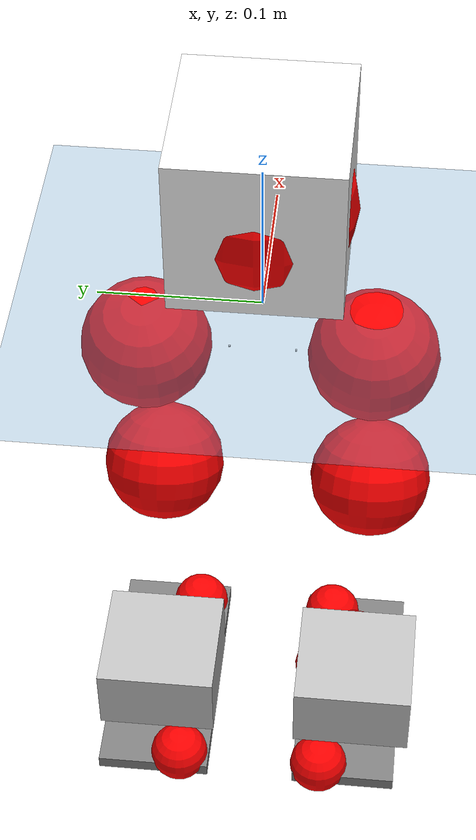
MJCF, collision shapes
<mujoco model="pi_12dof_release_v1">
  <compiler angle="radian" assetdir="assets" balanceinertia="true" inertiafromgeom="false"/>

  <option timestep="0.005" density="1.2" viscosity="2e-05"/>

  <size nkey="1"/>

  <visual>
    <quality shadowsize="8192"/>
    <map shadowclip="0.5"/>
  </visual>

  <default>
    <default class="/">
      <joint armature="0.01" damping="0.01" frictionloss="0.01"/>
      <geom contype="0" conaffinity="0" group="1" solref="-1000 -80"/>
      <site size="0.01 0.005 0.005" group="5"/>
      <general forcelimited="true" biastype="affine" gainprm="20" biasprm="0 -20 -0.5"/>
      <default class="foot">
        <geom size="0.0845 0.036 0.005" type="box" condim="6" group="4" priority="1" friction="0.9 0.2 0.2" solimp="0.015 1 0.005"/>
      </default>
      <default class="reward_collision_sphere">
        <geom group="5" rgba="1 0 0 1"/>
      </default>
    </default>
  </default>

  <asset>
    <texture type="skybox" colorspace="auto" name="//unnamed_texture_0" builtin="gradient" rgb1="0.95 0.95 0.95" rgb2="0.95 0.95 0.95" width="100" height="600"/>
    <texture type="2d" colorspace="auto" name="texplane" builtin="checker" rgb1="0.345 0.575 0.748" rgb2="0.345 0.575 0.748" markrgb="1 1 1" width="512" height="512"/>
    <material name="MatPlane" class="/" texture="texplane" texuniform="true" texrepeat="2 2" specular="0.9"/>
    <mesh name="baselink_1" class="/" file="baselink_1.STL"/>
    <mesh name="r_hip_pitch_link" class="/" file="r_hip_pitch_link.STL"/>
    <mesh name="r_hip_roll_link" class="/" file="r_hip_roll_link.STL"/>
    <mesh name="r_thigh_link" class="/" file="r_thigh_link.STL"/>
    <mesh name="r_calf_link" class="/" file="r_calf_link.STL"/>
    <mesh name="r_ankle_pitch_link" class="/" file="r_ankle_pitch_link.STL"/>
    <mesh name="r_ankle_roll_link" class="/" file="r_ankle_roll_link.STL"/>
    <mesh name="l_hip_pitch_link" class="/" file="l_hip_pitch_link.STL"/>
    <mesh name="l_hip_roll_link" class="/" file="l_hip_roll_link.STL"/>
    <mesh name="l_thigh_link" class="/" file="l_thigh_link.STL"/>
    <mesh name="l_calf_link" class="/" file="l_calf_link.STL"/>
    <mesh name="l_ankle_pitch_link" class="/" file="l_ankle_pitch_link.STL"/>
    <mesh name="l_ankle_roll_link" class="/" file="l_ankle_roll_link.STL"/>
  </asset>

  <worldbody>
    <geom name="floor" class="/" size="100 100 0.125" type="plane" group="0" material="MatPlane"/>
    <light name="toplight_shadow" class="/" pos="0 0 5" dir="0.0990148 0.0990148 -0.990148" type="directional" ambient="0.04 0.04 0.04" diffuse="0.55 0.55 0.55" specular="0.12 0.12 0.12"/>
    <light name="toplight_fill" class="/" pos="0 0 5" dir="0.0990148 0.0990148 -0.990148" type="directional" castshadow="false" ambient="0.04 0.04 0.04" diffuse="0.3 0.3 0.3" specular="0.08 0.08 0.08"/>
    <body name="trunk" pos="0.000680027 0.000128391 -0.00101581" quat="1 -0.000309812 0.000289123 0.000158329">
      <inertial pos="-5.07425e-05 -0.00238233 0.046399" quat="0.696536 0.00988723 0.010449 0.717377" mass="2.34586" diaginertia="0.0114011 0.00525391 0.00758049"/>
      <joint name="//unnamed_joint_0" type="free"/>
      <geom name="//unnamed_geom_1" class="/" type="mesh" density="0" rgba="1 1 1 1" mesh="baselink_1"/>
      <geom name="//unnamed_geom_2" class="/" size="0.0508704 0.0508704 0.0508704" pos="0 0 0.0901305" type="box" rgba="1 1 1 1"/>
      <geom name="//unnamed_geom_3" class="reward_collision_sphere" size="0.0559575" pos="0 0 0.0788642"/>
      <site name="imu" class="/" pos="0.00965195 -0.000362906 -0.00956951" size="0.0101741"/>
      <camera name="track" class="/" pos="0 -1.79212 0" quat="0.707107 0.707107 0 0" mode="trackcom"/>
      <camera name="ego_camera" class="/" pos="0.0772151 0 0.202794" quat="-0.5 -0.5 0.5 0.5"/>
      <body name="r_hip_pitch_link" pos="-0.000736088 -0.0207531 -0.0365666" quat="0.99219 -1.36282e-05 -0.124739 3.83116e-05">
        <inertial pos="0.000869139 -0.051287 4.56996e-05" quat="-0.0192806 0.705711 -0.0289575 0.707645" mass="0.374964" diaginertia="0.000121347 5.41897e-05 0.000146188"/>
        <joint name="r_hip_pitch_joint" class="/" pos="0 0 0" axis="-0.000826838 -0.999984 -0.00559654" stiffness="0.0010127" range="-1.73656 1.20714" armature="0.00938872" damping="0.0129372" frictionloss="0.0106675"/>
        <geom name="//unnamed_geom_4" class="/" type="mesh" density="0" rgba="0.75294 0.75294 0.75294 1" mesh="r_hip_pitch_link"/>
        <geom name="//unnamed_geom_5" class="/" size="0.000508704 0.000508704 0.000508704" type="box" rgba="0.75294 0.75294 0.75294 1"/>
        <body name="r_hip_roll_link" pos="0.000528568 -0.0477842 -8.07919e-05" quat="1 0.000306284 -0.00014248 -0.000747797">
          <inertial pos="-0.000632941 -0.000156127 -0.0697983" quat="0.709047 -0.0780168 -0.0819087 0.696029" mass="0.404424" diaginertia="0.000384751 0.000155101 0.000228966"/>
          <joint name="r_hip_roll_joint" class="/" pos="0 0 0" axis="-0.999998 -0.00143655 -0.00152494" stiffness="0.000650975" range="-0.111113 0.495009" armature="0.0101984" damping="0" frictionloss="0.011221"/>
          <geom name="//unnamed_geom_6" class="/" type="mesh" density="0" rgba="0.75294 0.75294 0.75294 1" mesh="r_hip_roll_link"/>
          <geom name="//unnamed_geom_7" class="/" size="0.000508704 0.000508704 0.000508704" type="box" rgba="0.75294 0.75294 0.75294 1"/>
          <geom name="//unnamed_geom_8" class="reward_collision_sphere" size="0.0406964"/>
          <body name="r_thigh_link" pos="0.000626394 0.00235044 -0.0782565" quat="1 1.92719e-05 0.000397361 8.06392e-05">
            <inertial pos="3.1332e-06 -0.000280721 -0.0527503" quat="0.737004 0.675886 0.00023015 0.00160361" mass="0.118728" diaginertia="0.000142202 5.5036e-05 0.000104723"/>
            <joint name="r_thigh_joint" class="/" pos="0 0 0" axis="4.97351e-05 -4.54099e-06 -1" range="-0.3119 0.608715" armature="0.0112807" damping="0.00828192" frictionloss="0.00981589"/>
            <geom name="//unnamed_geom_9" class="/" type="mesh" density="0" rgba="0.75294 0.75294 0.75294 1" mesh="r_thigh_link"/>
            <geom name="//unnamed_geom_10" class="/" size="0.000508704 0.000508704 0.000508704" type="box" rgba="0.75294 0.75294 0.75294 1"/>
            <body name="r_calf_link" pos="-0.00172093 -0.00375907 -0.079119" quat="0.947648 -4.71219e-05 0.319316 -2.60097e-05">
              <inertial pos="-0.000557991 -0.0033897 -0.0788557" quat="0.999881 -0.00417127 -0.00745146 0.0128603" mass="0.853151" diaginertia="0.00402741 0.00207236 0.000314417"/>
              <joint name="r_calf_joint" class="/" pos="0 0 0" axis="-0.00028359 -1 -0.000450624" range="-1.65285 0.628156" armature="0.0106115" damping="0.0138356" frictionloss="0.0104241"/>
              <geom name="//unnamed_geom_11" class="/" type="mesh" density="0" rgba="0.75294 0.75294 0.75294 1" mesh="r_calf_link"/>
              <geom name="//unnamed_geom_12" class="/" size="0.000508704 0.000508704 0.000508704" type="box" rgba="0.75294 0.75294 0.75294 1"/>
              <geom name="//unnamed_geom_13" class="reward_collision_sphere" size="0.0406964"/>
              <body name="r_ankle_pitch_link" pos="0.000517213 0.00137224 -0.159057" quat="0.980155 0.000325125 -0.198232 0.000468306">
                <inertial pos="0.00681741 0.0037863 0.000142782" quat="0.00205761 0.708079 -0.00245283 0.706126" mass="0.187704" diaginertia="0.00035649 0.000126261 0.000223047"/>
                <joint name="r_ankle_pitch_joint" class="/" pos="0 0 0" axis="-0.000319528 -1 -0.000598476" range="-1.26648 0.504436" armature="0.0100491" damping="0.000775597" frictionloss="0.00989575"/>
                <geom name="//unnamed_geom_14" class="/" type="mesh" density="0" rgba="0.75294 0.75294 0.75294 1" mesh="r_ankle_pitch_link"/>
                <geom name="//unnamed_geom_15" class="/" size="0.0396789 0.0406964 0.0254352" type="box" rgba="0.75294 0.75294 0.75294 1"/>
                <body name="r_ankle_roll_link" pos="0.0785299 0.00367328 -0.000173188" quat="1 -1.15716e-05 0.000114673 0.000117421">
                  <inertial pos="-0.0255886 0.00023719 -0.0163568" quat="0.564886 0.432453 0.424609 0.559997" mass="0.550505" diaginertia="0.00130796 0.000609352 0.000521255"/>
                  <joint name="r_ankle_roll_joint" class="/" pos="0 0 0" axis="-0.999999 -0.00106216 0.000614723" range="-0.148516 0.143486" armature="0.0112158" damping="0.00647609" frictionloss="0.00980839"/>
                  <geom name="//unnamed_geom_16" class="/" type="mesh" density="0" rgba="0.75294 0.75294 0.75294 1" mesh="r_ankle_roll_link"/>
                  <geom name="//unnamed_geom_17" class="/" type="mesh" rgba="0.75294 0.75294 0.75294 1" mesh="r_ankle_roll_link"/>
                  <geom name="right_foot" class="foot" size="0.0818784 0.0360828 0.00481577" pos="-0.0525063 0 -0.0495718"/>
                  <geom name="//unnamed_geom_19" class="reward_collision_sphere" size="0.0406964" pos="-0.0514768 0 -0.0225326"/>
                  <geom name="//unnamed_geom_20" class="reward_collision_sphere" size="0.0203482" pos="0.015443 0.0179212 -0.0450652"/>
                  <geom name="//unnamed_geom_21" class="reward_collision_sphere" size="0.0203482" pos="-0.123544 0.0179212 -0.0450652"/>
                  <site name="right_foot" class="foot" pos="-0.0525063 0 -0.0495718" size="0.0101741"/>
                </body>
              </body>
            </body>
          </body>
        </body>
      </body>
      <body name="l_hip_pitch_link" pos="0.00127918 0.0206396 -0.0386216" quat="0.992195 1.64187e-05 -0.124697 -3.85539e-06">
        <inertial pos="0.000628904 0.0482836 -0.00235769" quat="-0.0353269 0.706181 0.0334399 0.706358" mass="0.420981" diaginertia="0.000156842 6.25719e-05 0.000188776"/>
        <joint name="l_hip_pitch_joint" class="/" pos="0 0 0" axis="0.0015748 0.999996 0.00221757" range="-1.25041 1.75378" armature="0.0101859" damping="0.0100057" frictionloss="0.0100821"/>
        <geom name="//unnamed_geom_22" class="/" type="mesh" density="0" rgba="0.75294 0.75294 0.75294 1" mesh="l_hip_pitch_link"/>
        <geom name="//unnamed_geom_23" class="/" size="0.000508704 0.000508704 0.000508704" type="box" rgba="0.75294 0.75294 0.75294 1"/>
        <body name="l_hip_roll_link" pos="-0.00128821 0.051271 -0.000139566" quat="1 -0.000471373 -5.92567e-05 8.77448e-05">
          <inertial pos="-0.00389809 -0.00107522 -0.0709107" quat="0.699253 -0.0762605 -0.0782793 0.706472" mass="0.412158" diaginertia="0.000372504 0.00016032 0.0002291"/>
          <joint name="l_hip_roll_joint" class="/" pos="0 0 0" axis="-0.999991 0.000840745 -0.00418732" range="-0.520435 0.1283" armature="0.0105199" damping="0.00993661" frictionloss="0.0103804"/>
          <geom name="//unnamed_geom_24" class="/" type="mesh" density="0" rgba="0.75294 0.75294 0.75294 1" mesh="l_hip_roll_link"/>
          <geom name="//unnamed_geom_25" class="/" size="0.000508704 0.000508704 0.000508704" type="box" rgba="0.75294 0.75294 0.75294 1"/>
          <geom name="//unnamed_geom_26" class="reward_collision_sphere" size="0.0406964"/>
          <body name="l_thigh_link" pos="2.64533e-05 -0.00137455 -0.0770424" quat="1 3.46624e-07 1.05308e-05 -3.33164e-05">
            <inertial pos="-0.000369034 -0.000124596 -0.0524127" quat="0.675177 0.737655 -9.57655e-05 0.000155939" mass="0.1225" diaginertia="0.000148457 5.73733e-05 0.000107027"/>
            <joint name="l_thigh_joint" class="/" pos="0 0 0" axis="-6.61313e-05 -0.000715874 -1" range="-0.641911 0.300475" armature="0.00967665" damping="0.00366512" frictionloss="0.0100148"/>
            <geom name="//unnamed_geom_27" class="/" type="mesh" density="0" rgba="0.75294 0.75294 0.75294 1" mesh="l_thigh_link"/>
            <geom name="//unnamed_geom_28" class="/" size="0.000508704 0.000508704 0.000508704" type="box" rgba="0.75294 0.75294 0.75294 1"/>
            <body name="l_calf_link" pos="0.00164783 0.000959589 -0.0796848" quat="0.947647 -0.000100764 0.31932 0.000258594">
              <inertial pos="0.000740515 0.00211582 -0.0810502" quat="0.999924 0.0056516 -0.010914 -0.000138327" mass="0.844835" diaginertia="0.00395561 0.00195532 0.000308164"/>
              <joint name="l_calf_joint" class="/" pos="0 0 0" axis="-0.00422586 0.999988 -0.00239874" range="-0.650049 1.63172" armature="0.0103163" damping="0" frictionloss="0.0096518"/>
              <geom name="//unnamed_geom_29" class="/" type="mesh" density="0" rgba="0.75294 0.75294 0.75294 1" mesh="l_calf_link"/>
              <geom name="//unnamed_geom_30" class="/" size="0.000508704 0.000508704 0.000508704" type="box" rgba="0.75294 0.75294 0.75294 1"/>
              <geom name="//unnamed_geom_31" class="reward_collision_sphere" size="0.0406964"/>
              <body name="l_ankle_pitch_link" pos="0.00255035 -0.000508506 -0.159748" quat="0.979942 7.52557e-05 -0.199281 7.22965e-06">
                <inertial pos="0.00480836 -0.00126905 -0.000166885" quat="-0.00226742 0.706997 0.00256773 0.707209" mass="0.183724" diaginertia="0.000352665 0.000127387 0.000216457"/>
                <joint name="l_ankle_pitch_joint" class="/" pos="0 0 0" axis="0.000837573 0.999999 -0.00115469" range="-0.49512 1.30287" armature="0.0101366" damping="0.00982821" frictionloss="0.00967908"/>
                <geom name="//unnamed_geom_32" class="/" type="mesh" density="0" rgba="0.75294 0.75294 0.75294 1" mesh="l_ankle_pitch_link"/>
                <geom name="//unnamed_geom_33" class="/" size="0.0396789 0.0406964 0.0254352" type="box" rgba="0.75294 0.75294 0.75294 1"/>
                <body name="l_ankle_roll_link" pos="0.0763062 0.0013684 0.000215546" quat="1 9.67905e-05 -0.000937988 0.000199333">
                  <inertial pos="-0.0243562 0.000210808 -0.01663" quat="0.562856 0.429052 0.434933 0.556724" mass="0.555631" diaginertia="0.00132631 0.000596119 0.000519678"/>
                  <joint name="l_ankle_roll_joint" class="/" pos="0 0 0" axis="-0.999998 -0.00108316 0.00163812" range="-0.12557 0.147306" armature="0.0107523" damping="0.0189923" frictionloss="0.00971898"/>
                  <geom name="//unnamed_geom_34" class="/" type="mesh" density="0" rgba="0.75294 0.75294 0.75294 1" mesh="l_ankle_roll_link"/>
                  <geom name="//unnamed_geom_35" class="/" type="mesh" rgba="0.75294 0.75294 0.75294 1" mesh="l_ankle_roll_link"/>
                  <geom name="left_foot" class="foot" size="0.0830019 0.0390883 0.00485821" pos="-0.0525063 0 -0.0495718"/>
                  <geom name="//unnamed_geom_37" class="reward_collision_sphere" size="0.0406964" pos="-0.0514768 0 -0.0225326"/>
                  <geom name="//unnamed_geom_38" class="reward_collision_sphere" size="0.0203482" pos="0.015443 -0.0179212 -0.0450652"/>
                  <geom name="//unnamed_geom_39" class="reward_collision_sphere" size="0.0203482" pos="-0.123544 -0.0179212 -0.0450652"/>
                  <site name="left_foot" class="foot" pos="-0.0525063 0 -0.0495718" size="0.0101741"/>
                </body>
              </body>
            </body>
          </body>
        </body>
      </body>
    </body>
  </worldbody>

  <contact>
    <pair class="/" geom1="floor" geom2="right_foot" name="//unnamed_contact_1"/>
    <pair class="/" geom1="floor" geom2="left_foot" name="//unnamed_contact_0"/>
  </contact>

  <actuator>
    <general name="r_hip_pitch_joint" class="/" joint="r_hip_pitch_joint" forcerange="-22.236 22.236" gainprm="19.19" biasprm="0 -19.19 -0.517683"/>
    <general name="r_hip_roll_joint" class="/" joint="r_hip_roll_joint" forcerange="-21.4835 21.4835" gainprm="19.19" biasprm="0 -19.19 -0.517683"/>
    <general name="r_thigh_joint" class="/" joint="r_thigh_joint" forcerange="-21.8253 21.8253" gainprm="19.19" biasprm="0 -19.19 -0.517683"/>
    <general name="r_calf_joint" class="/" joint="r_calf_joint" forcerange="-22.8115 22.8115" gainprm="19.19" biasprm="0 -19.19 -0.517683"/>
    <general name="r_ankle_pitch_joint" class="/" joint="r_ankle_pitch_joint" forcerange="-21.4643 21.4643" gainprm="19.19" biasprm="0 -19.19 -0.517683"/>
    <general name="r_ankle_roll_joint" class="/" joint="r_ankle_roll_joint" forcerange="-20.9252 20.9252" gainprm="19.19" biasprm="0 -19.19 -0.517683"/>
    <general name="l_hip_pitch_joint" class="/" joint="l_hip_pitch_joint" forcerange="-20.7315 20.7315" gainprm="19.19" biasprm="0 -19.19 -0.517683"/>
    <general name="l_hip_roll_joint" class="/" joint="l_hip_roll_joint" forcerange="-19.7158 19.7158" gainprm="19.19" biasprm="0 -19.19 -0.517683"/>
    <general name="l_thigh_joint" class="/" joint="l_thigh_joint" forcerange="-22.1812 22.1812" gainprm="19.19" biasprm="0 -19.19 -0.517683"/>
    <general name="l_calf_joint" class="/" joint="l_calf_joint" forcerange="-21.1304 21.1304" gainprm="19.19" biasprm="0 -19.19 -0.517683"/>
    <general name="l_ankle_pitch_joint" class="/" joint="l_ankle_pitch_joint" forcerange="-21.6757 21.6757" gainprm="19.19" biasprm="0 -19.19 -0.517683"/>
    <general name="l_ankle_roll_joint" class="/" joint="l_ankle_roll_joint" forcerange="-21.5994 21.5994" gainprm="19.19" biasprm="0 -19.19 -0.517683"/>
  </actuator>

  <sensor>
    <gyro site="imu" name="imu_angular_velocity"/>
    <velocimeter site="imu" name="imu_linear_velocity"/>
    <framelinvel objtype="site" objname="left_foot" name="left_foot_global_linear_velocity"/>
    <framelinvel objtype="site" objname="right_foot" name="right_foot_global_linear_velocity"/>
  </sensor>

  <keyframe>
    <key name="home" qpos="0 0 0.291 1 0 0 0 0.4 0 0 -0.8 0.4 0 -0.4 0 0 0.8 -0.4 0"/>
  </keyframe>
</mujoco>
